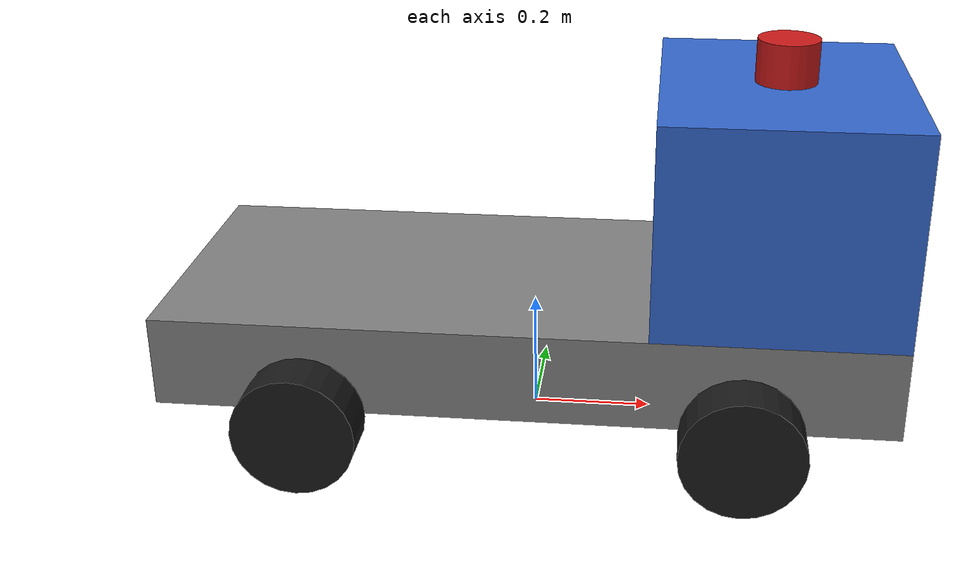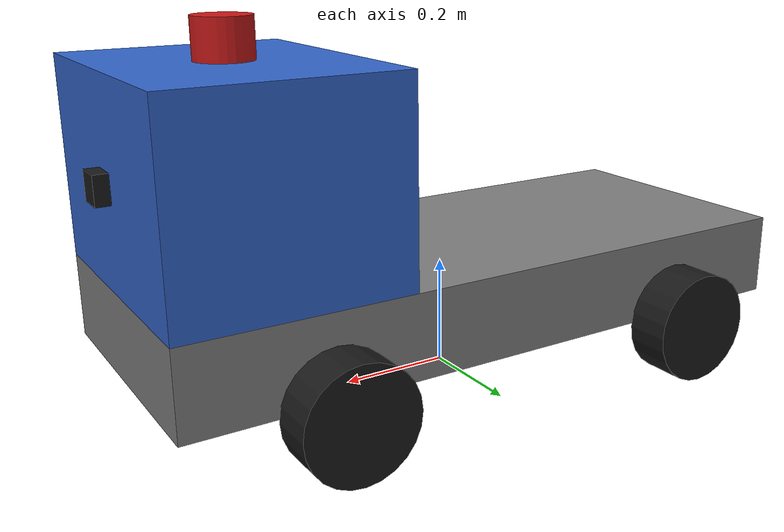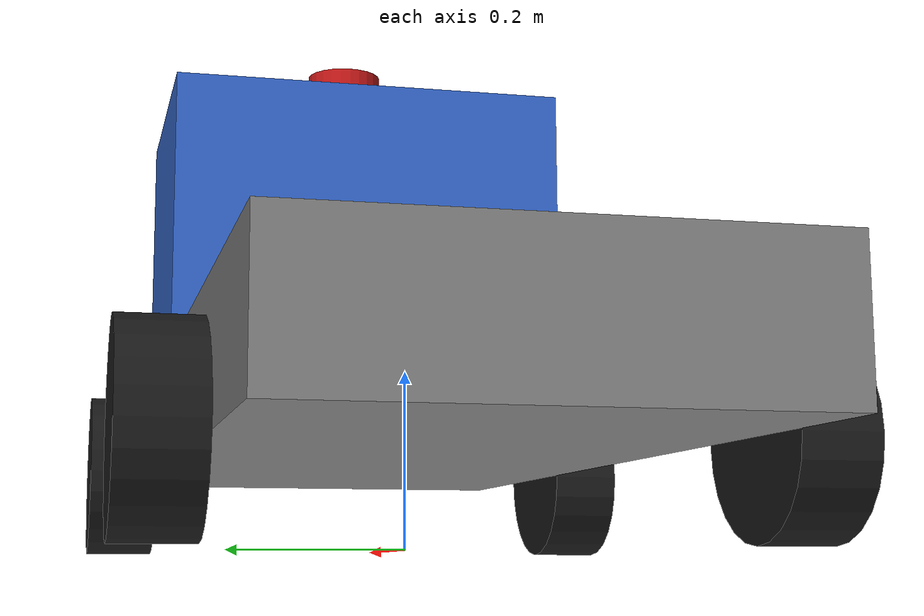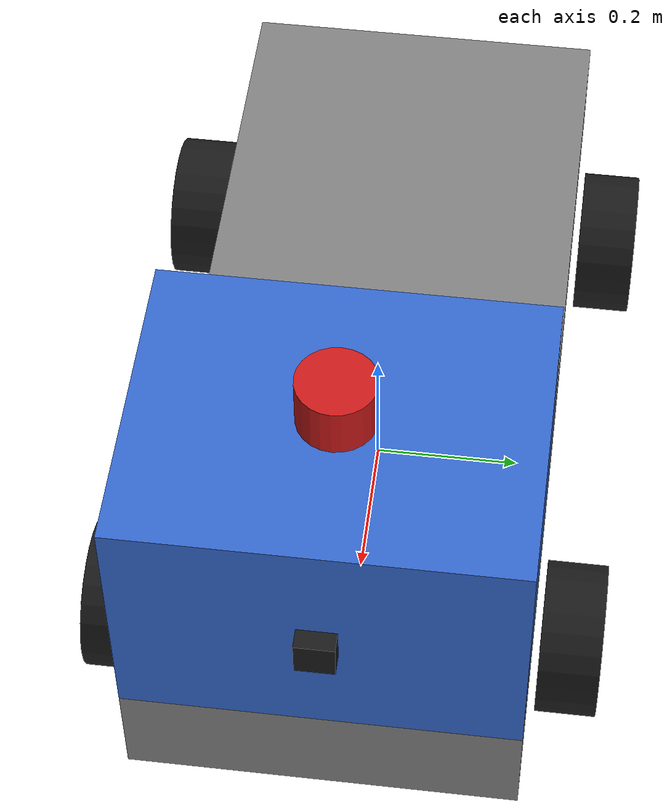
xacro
<?xml version="1.0"?>
<robot xmlns:xacro="http://www.ros.org/wiki/xacro" name="truck_robot">

  <!-- Material definitions for RViz2 -->
  <material name="gray">
    <color rgba="0.5 0.5 0.5 1"/>
  </material>

  <material name="blue">
    <color rgba="0.2 0.4 0.8 1"/>
  </material>

  <material name="red">
    <color rgba="0.8 0.1 0.1 1"/>
  </material>

  <material name="black">
    <color rgba="0.1 0.1 0.1 1"/>
  </material>

  <!-- Define xacro properties for easy customization -->
  <xacro:property name="PI" value="3.14159265359"/>

  <!-- Truck dimensions -->
  <xacro:property name="chassis_length" value="1.2"/>
  <xacro:property name="chassis_width" value="0.5"/>
  <xacro:property name="chassis_height" value="0.15"/>
  <xacro:property name="chassis_mass" value="15.0"/>

  <xacro:property name="cabin_length" value="0.4"/>
  <xacro:property name="cabin_width" value="0.5"/>
  <xacro:property name="cabin_height" value="0.35"/>
  <xacro:property name="cabin_mass" value="5.0"/>

  <!-- Wheel properties -->
  <xacro:property name="wheel_radius" value="0.1"/>
  <xacro:property name="wheel_width" value="0.08"/>
  <xacro:property name="wheel_mass" value="1.0"/>
  <xacro:property name="wheel_offset_x" value="0.35"/>
  <xacro:property name="wheel_offset_y" value="0.3"/>
  <xacro:property name="wheel_offset_z" value="0.0"/>

  <!-- LIDAR properties -->
  <xacro:property name="lidar_radius" value="0.05"/>
  <xacro:property name="lidar_height" value="0.07"/>
  <xacro:property name="lidar_mass" value="0.3"/>

  <!-- Camera properties -->
  <xacro:property name="camera_size" value="0.05"/>
  <xacro:property name="camera_mass" value="0.1"/>

  <!-- Macro for inertial properties of a box -->
  <xacro:macro name="box_inertia" params="mass length width height">
    <inertial>
      <mass value="${mass}"/>
      <inertia ixx="${(1/12) * mass * (width*width + height*height)}" ixy="0.0" ixz="0.0"
               iyy="${(1/12) * mass * (length*length + height*height)}" iyz="0.0"
               izz="${(1/12) * mass * (length*length + width*width)}"/>
    </inertial>
  </xacro:macro>

  <!-- Macro for inertial properties of a cylinder -->
  <xacro:macro name="cylinder_inertia" params="mass radius height">
    <inertial>
      <mass value="${mass}"/>
      <inertia ixx="${(1/12) * mass * (3*radius*radius + height*height)}" ixy="0.0" ixz="0.0"
               iyy="${(1/12) * mass * (3*radius*radius + height*height)}" iyz="0.0"
               izz="${(1/2) * mass * radius * radius}"/>
    </inertial>
  </xacro:macro>

  <!-- Macro for wheels -->
  <xacro:macro name="wheel" params="prefix reflect_y reflect_x">
    <link name="${prefix}_wheel">
      <visual>
        <origin xyz="0 0 0" rpy="${PI/2} 0 0"/>
        <geometry>
          <cylinder radius="${wheel_radius}" length="${wheel_width}"/>
        </geometry>
        <material name="black">
          <color rgba="0.1 0.1 0.1 1"/>
        </material>
      </visual>
      <collision>
        <origin xyz="0 0 0" rpy="${PI/2} 0 0"/>
        <geometry>
          <cylinder radius="${wheel_radius}" length="${wheel_width}"/>
        </geometry>
      </collision>
      <xacro:cylinder_inertia mass="${wheel_mass}" radius="${wheel_radius}" height="${wheel_width}"/>
    </link>

    <joint name="${prefix}_wheel_joint" type="continuous">
      <parent link="base_link"/>
      <child link="${prefix}_wheel"/>
      <origin xyz="${reflect_x * wheel_offset_x} ${reflect_y * wheel_offset_y} ${wheel_offset_z}" rpy="0 0 0"/>
      <axis xyz="0 1 0"/>
    </joint>
  </xacro:macro>

  <!-- Base footprint (for navigation) -->
  <link name="base_footprint"/>

  <!-- Base link (chassis) -->
  <link name="base_link">
    <visual>
      <origin xyz="0 0 ${chassis_height/2}" rpy="0 0 0"/>
      <geometry>
        <box size="${chassis_length} ${chassis_width} ${chassis_height}"/>
      </geometry>
      <material name="gray">
        <color rgba="0.5 0.5 0.5 1"/>
      </material>
    </visual>
    <collision>
      <origin xyz="0 0 ${chassis_height/2}" rpy="0 0 0"/>
      <geometry>
        <box size="${chassis_length} ${chassis_width} ${chassis_height}"/>
      </geometry>
    </collision>
    <xacro:box_inertia mass="${chassis_mass}" length="${chassis_length}" width="${chassis_width}" height="${chassis_height}"/>
  </link>

  <!-- Joint connecting footprint to base_link -->
  <joint name="base_joint" type="fixed">
    <parent link="base_footprint"/>
    <child link="base_link"/>
    <origin xyz="0 0 ${wheel_radius}" rpy="0 0 0"/>
  </joint>

  <!-- Cabin link -->
  <link name="cabin_link">
    <visual>
      <origin xyz="0 0 ${cabin_height/2}" rpy="0 0 0"/>
      <geometry>
        <box size="${cabin_length} ${cabin_width} ${cabin_height}"/>
      </geometry>
      <material name="blue">
        <color rgba="0.2 0.4 0.8 1"/>
      </material>
    </visual>
    <collision>
      <origin xyz="0 0 ${cabin_height/2}" rpy="0 0 0"/>
      <geometry>
        <box size="${cabin_length} ${cabin_width} ${cabin_height}"/>
      </geometry>
    </collision>
    <xacro:box_inertia mass="${cabin_mass}" length="${cabin_length}" width="${cabin_width}" height="${cabin_height}"/>
  </link>

  <!-- Joint connecting cabin to chassis -->
  <joint name="cabin_joint" type="fixed">
    <parent link="base_link"/>
    <child link="cabin_link"/>
    <origin xyz="${chassis_length/2 - cabin_length/2} 0 ${chassis_height}" rpy="0 0 0"/>
  </joint>

  <!-- LIDAR link -->
  <link name="lidar_link">
    <visual>
      <origin xyz="0 0 0" rpy="0 0 0"/>
      <geometry>
        <cylinder radius="${lidar_radius}" length="${lidar_height}"/>
      </geometry>
      <material name="red">
        <color rgba="0.8 0.1 0.1 1"/>
      </material>
    </visual>
    <collision>
      <origin xyz="0 0 0" rpy="0 0 0"/>
      <geometry>
        <cylinder radius="${lidar_radius}" length="${lidar_height}"/>
      </geometry>
    </collision>
    <xacro:cylinder_inertia mass="${lidar_mass}" radius="${lidar_radius}" height="${lidar_height}"/>
  </link>

  <!-- Joint connecting LIDAR to cabin top -->
  <joint name="lidar_joint" type="fixed">
    <parent link="cabin_link"/>
    <child link="lidar_link"/>
    <origin xyz="0 0 ${cabin_height + lidar_height/2}" rpy="0 0 0"/>
  </joint>

  <!-- Camera link -->
  <link name="camera">
    <visual>
      <origin xyz="0 0 0" rpy="0 0 0"/>
      <geometry>
        <box size="${camera_size} ${camera_size} ${camera_size}"/>
      </geometry>
      <material name="black">
        <color rgba="0.1 0.1 0.1 1"/>
      </material>
    </visual>
    <collision>
      <origin xyz="0 0 0" rpy="0 0 0"/>
      <geometry>
        <box size="${camera_size} ${camera_size} ${camera_size}"/>
      </geometry>
    </collision>
    <xacro:box_inertia mass="${camera_mass}" length="${camera_size}" width="${camera_size}" height="${camera_size}"/>
  </link>

  <!-- Joint connecting camera to cabin front -->
  <joint name="camera_joint" type="fixed">
    <parent link="cabin_link"/>
    <child link="camera"/>
    <origin xyz="${cabin_length/2} 0 ${cabin_height/2}" rpy="0 0 0"/>
  </joint>

  <!-- Instantiate wheels -->
  <xacro:wheel prefix="front_left" reflect_y="1" reflect_x="1"/>
  <xacro:wheel prefix="front_right" reflect_y="-1" reflect_x="1"/>
  <xacro:wheel prefix="rear_left" reflect_y="1" reflect_x="-1"/>
  <xacro:wheel prefix="rear_right" reflect_y="-1" reflect_x="-1"/>

  <!-- Gazebo-specific elements (optional but recommended) -->
  <gazebo reference="base_link">
    <material>Gazebo/Grey</material>
  </gazebo>

  <gazebo reference="cabin_link">
    <material>Gazebo/Blue</material>
  </gazebo>

  <gazebo reference="lidar_link">
    <material>Gazebo/Red</material>
    <sensor type="ray" name="lidar_sensor">
      <pose>0 0 0 0 0 0</pose>
      <visualize>true</visualize>
      <update_rate>10</update_rate>
      <ray>
        <scan>
          <horizontal>
            <samples>360</samples>
            <resolution>1</resolution>
            <min_angle>-${PI}</min_angle>
            <max_angle>${PI}</max_angle>
          </horizontal>
        </scan>
        <range>
          <min>0.2</min>
          <max>30.0</max>
          <resolution>0.01</resolution>
        </range>
        <noise>
          <type>gaussian</type>
          <mean>0.0</mean>
          <stddev>0.01</stddev>
        </noise>
      </ray>
      <plugin name="gazebo_ros_lidar" filename="libgazebo_ros_ray_sensor.so">
        <ros>
          <namespace>/truck_robot</namespace>
          <remapping>~/out:=scan</remapping>
        </ros>
        <output_type>sensor_msgs/LaserScan</output_type>
        <frame_name>lidar_link</frame_name>
      </plugin>
    </sensor>
  </gazebo>

  <gazebo>
    <plugin name="gazebo_ros_diff_drive" filename="libgazebo_ros_diff_drive.so">
      <update_rate>50</update_rate>
      <left_joint>front_left_wheel_joint</left_joint>
      <left_joint>rear_left_wheel_joint</left_joint>
      <right_joint>front_right_wheel_joint</right_joint>
      <right_joint>rear_right_wheel_joint</right_joint>
      <wheel_separation>${wheel_offset_y * 2}</wheel_separation>
      <wheel_diameter>${wheel_radius * 2}</wheel_diameter>
      <max_wheel_torque>20</max_wheel_torque>
      <max_wheel_acceleration>1.0</max_wheel_acceleration>
      <command_topic>cmd_vel</command_topic>
      <publish_odom>true</publish_odom>
      <publish_odom_tf>true</publish_odom_tf>
      <publish_wheel_tf>true</publish_wheel_tf>
      <odometry_topic>odom</odometry_topic>
      <odometry_frame>odom</odometry_frame>
      <robot_base_frame>base_footprint</robot_base_frame>
    </plugin>
  </gazebo>

</robot>
